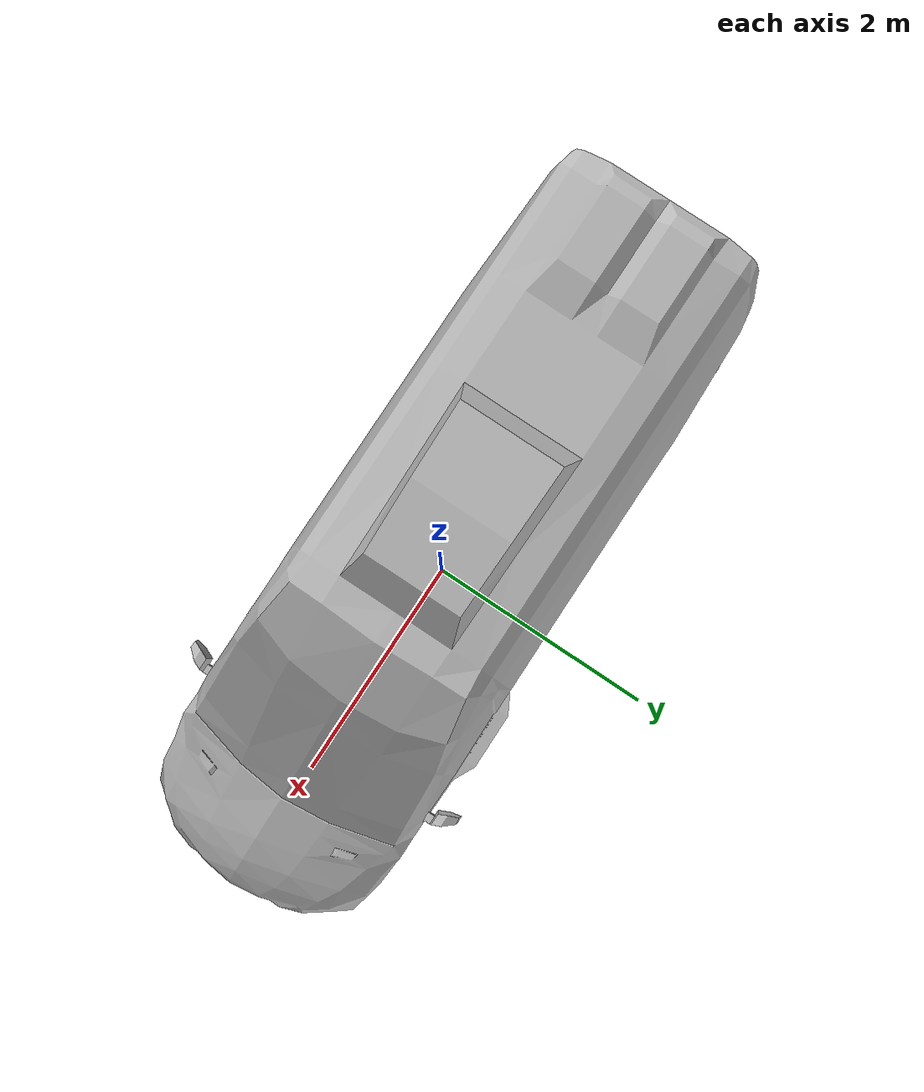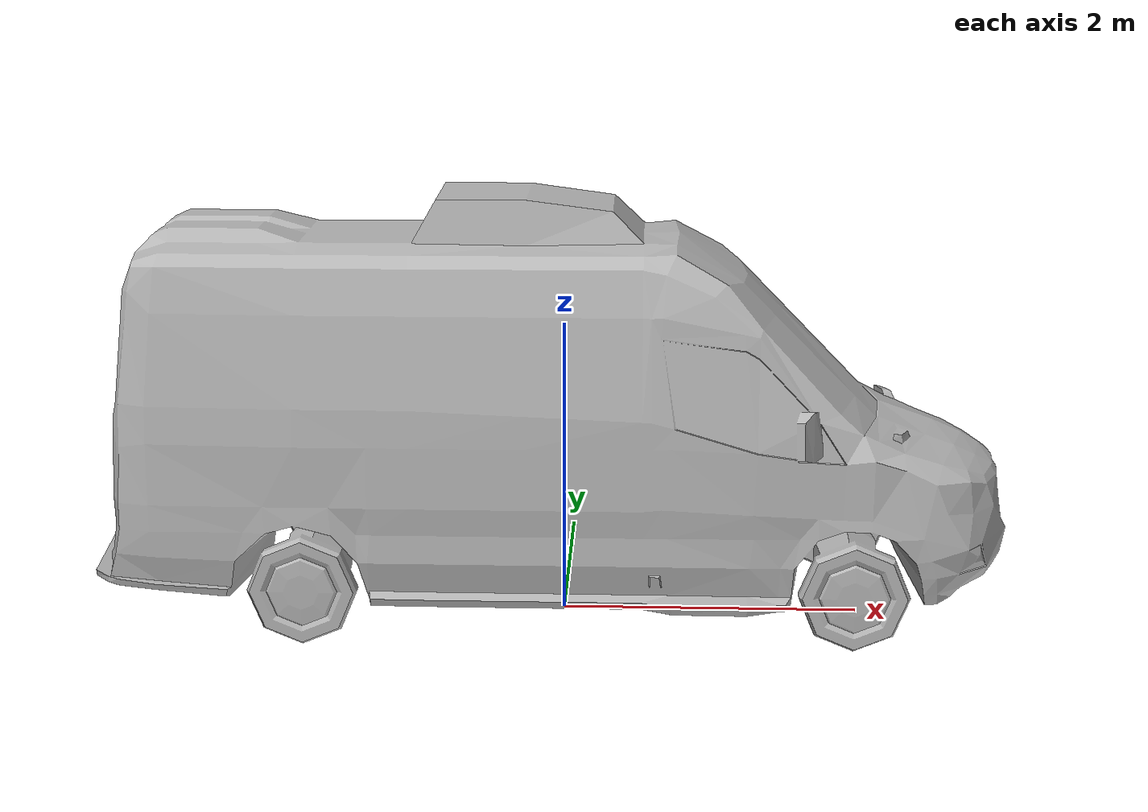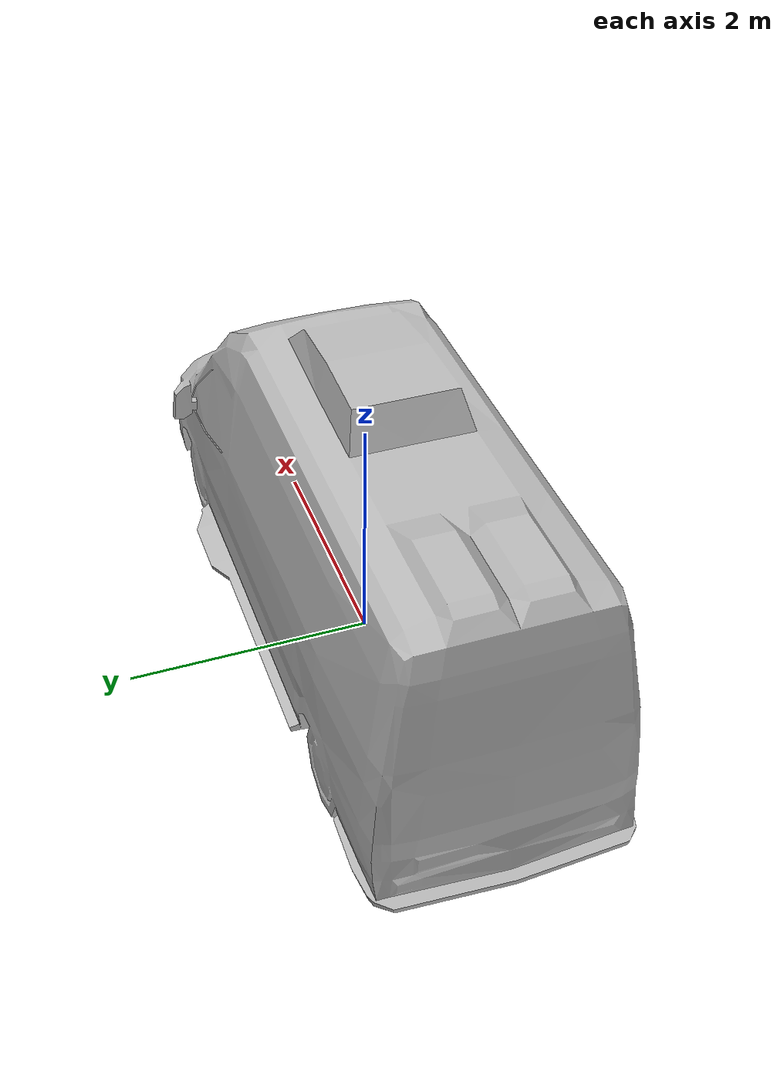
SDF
<?xml version='1.0' encoding='utf-8'?>
<sdf version="1.6">
  <model name="Ambulance2">
    <static>true</static>
    <link name="body">
      <pose>0 0 0 0 0 0</pose>

      <visual name="visual">
        <geometry>
          <mesh>
            <uri>model://Ambulance2/meshes/Ambulance2.obj</uri>
          </mesh>
        </geometry>
      </visual>

      <collision name="collision">
        <geometry>
          <mesh>
            <uri>model://Ambulance2/meshes/Ambulance2_Col.obj</uri>
          </mesh>
        </geometry>
      </collision>

    </link>
  </model>
</sdf>
